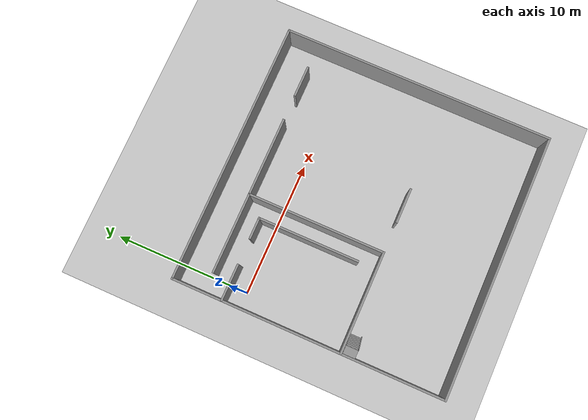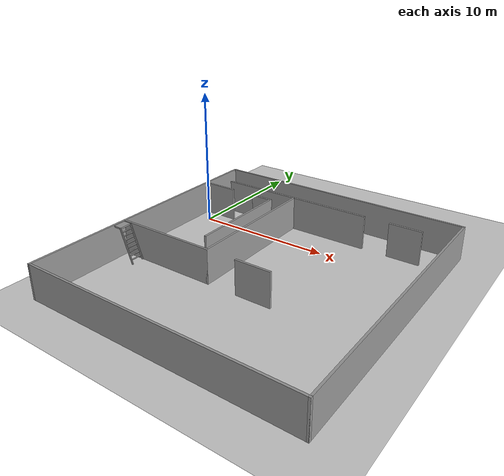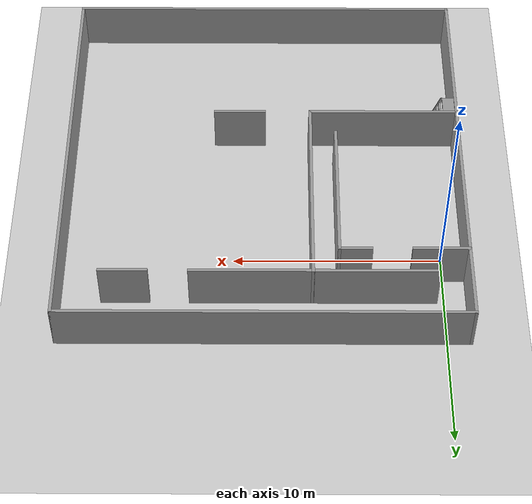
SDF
<sdf version="1.6">
 <world name="default">
  <model name="ground_plane">
   <static>1</static>
   <link name="link">
    <collision name="collision">
     <geometry><plane><normal>0 0 1</normal><size>100 100</size></plane></geometry>
     <surface><friction><ode><mu>100</mu><mu2>50</mu2></ode></friction></surface>
    </collision>
    <visual name="visual">
     <cast_shadows>0</cast_shadows>
     <geometry><plane><normal>0 0 1</normal><size>100 100</size></plane></geometry>
     <material>
      <script><uri>file://media/materials/scripts/gazebo.material</uri><name>Gazebo/Grey</name></script>
     </material>
    </visual>
   </link>
  </model>
  <model name="24fall_finalproject">
   <pose>8.55103 -5.1631 0 0 -0 0</pose>
   <link name="Wall_11">
    <collision name="Wall_11_Collision">
     <geometry><box><size>20.05 0.15 2.5</size></box></geometry>
     <pose>0 0 1.25 0 -0 0</pose>
    </collision>
    <visual name="Wall_11_Visual">
     <pose>0 0 1.25 0 -0 0</pose>
     <geometry><box><size>20.05 0.15 2.5</size></box></geometry>
     <material>
      <script><uri>file://media/materials/scripts/gazebo.material</uri><name>Gazebo/Grey</name></script>
      <ambient>1 1 1 1</ambient>
     </material>
     <meta><layer>0</layer></meta>
    </visual>
    <pose>-9.675 0 0 0 -0 -1.5708</pose>
   </link>
   <link name="Wall_22">
    <collision name="Wall_22_Collision">
     <geometry><box><size>2.727 0.15 2.5</size></box></geometry>
     <pose>0 0 1.25 0 -0 0</pose>
    </collision>
    <visual name="Wall_22_Visual">
     <pose>0 0 1.25 0 -0 0</pose>
     <geometry><box><size>2.727 0.15 2.5</size></box></geometry>
     <material>
      <script><uri>file://media/materials/scripts/gazebo.material</uri><name>Gazebo/Grey</name></script>
      <ambient>1 1 1 1</ambient>
     </material>
     <meta><layer>0</layer></meta>
    </visual>
    <pose>-8.3505 6.277 0 0 -0 0</pose>
   </link>
   <link name="Wall_24">
    <collision name="Wall_24_Collision">
     <geometry><box><size>1.65 0.15 2.5</size></box></geometry>
     <pose>0 0 1.25 0 -0 0</pose>
    </collision>
    <visual name="Wall_24_Visual">
     <pose>0 0 1.25 0 -0 0</pose>
     <geometry><box><size>1.65 0.15 2.5</size></box></geometry>
     <material>
      <script><uri>file://media/materials/scripts/gazebo.material</uri><name>Gazebo/Grey</name></script>
      <ambient>1 1 1 1</ambient>
     </material>
     <meta><layer>0</layer></meta>
    </visual>
    <pose>-4.312 6.277 0 0 -0 0</pose>
   </link>
   <link name="Wall_27">
    <collision name="Wall_27_Collision">
     <geometry><box><size>7.5 0.15 2.5</size></box></geometry>
     <pose>0 0 1.25 0 -0 0</pose>
    </collision>
    <visual name="Wall_27_Visual">
     <pose>0 0 1.25 0 -0 0</pose>
     <geometry><box><size>7.5 0.15 2.5</size></box></geometry>
     <material>
      <script><uri>file://media/materials/scripts/gazebo.material</uri><name>Gazebo/Grey</name></script>
      <ambient>1 1 1 1</ambient>
     </material>
     <meta><layer>0</layer></meta>
    </visual>
    <pose>-3.562 2.602 0 0 -0 -1.5708</pose>
   </link>
   <link name="Wall_29">
    <collision name="Wall_29_Collision">
     <geometry><box><size>7.5 0.15 2.5</size></box></geometry>
     <pose>0 0 1.25 0 -0 0</pose>
    </collision>
    <visual name="Wall_29_Visual">
     <pose>0 0 1.25 0 -0 0</pose>
     <geometry><box><size>7.5 0.15 2.5</size></box></geometry>
     <material>
      <script><uri>file://media/materials/scripts/gazebo.material</uri><name>Gazebo/Grey</name></script>
      <ambient>1 1 1 1</ambient>
     </material>
     <meta><layer>0</layer></meta>
    </visual>
    <pose>-5.989 -2.45 0 0 -0 0</pose>
   </link>
   <link name="Wall_31">
    <collision name="Wall_31_Collision">
     <geometry><box><size>10.2 0.15 2.5</size></box></geometry>
     <pose>0 0 1.25 0 -0 0</pose>
    </collision>
    <visual name="Wall_31_Visual">
     <pose>0 0 1.25 0 -0 0</pose>
     <geometry><box><size>10.2 0.15 2.5</size></box></geometry>
     <material>
      <script><uri>file://media/materials/scripts/gazebo.material</uri><name>Gazebo/Grey</name></script>
      <ambient>1 1 1 1</ambient>
     </material>
     <meta><layer>0</layer></meta>
    </visual>
    <pose>-2.314 2.575 0 0 -0 1.5708</pose>
   </link>
   <link name="Wall_33">
    <collision name="Wall_33_Collision">
     <geometry><box><size>6 0.15 2.5</size></box></geometry>
     <pose>0 0 1.25 0 -0 0</pose>
    </collision>
    <visual name="Wall_33_Visual">
     <pose>0 0 1.25 0 -0 0</pose>
     <geometry><box><size>6 0.15 2.5</size></box></geometry>
     <material>
      <script><uri>file://media/materials/scripts/gazebo.material</uri><name>Gazebo/Grey</name></script>
      <ambient>1 1 1 1</ambient>
     </material>
     <meta><layer>0</layer></meta>
    </visual>
    <pose>-5.239 7.6 0 0 -0 3.14159</pose>
   </link>
   <link name="Wall_36">
    <collision name="Wall_36_Collision">
     <geometry><box><size>19.5 0.15 2.5</size></box></geometry>
     <pose>0 0 1.25 0 -0 0</pose>
    </collision>
    <visual name="Wall_36_Visual">
     <pose>0 0 1.25 0 -0 0</pose>
     <geometry><box><size>19.5 0.15 2.5</size></box></geometry>
     <material>
      <script><uri>file://media/materials/scripts/gazebo.material</uri><name>Gazebo/Grey</name></script>
      <ambient>1 1 1 1</ambient>
     </material>
     <meta><layer>0</layer></meta>
    </visual>
    <pose>1e-06 9.95 0 0 -0 0</pose>
   </link>
   <link name="Wall_37">
    <collision name="Wall_37_Collision">
     <geometry><box><size>20.05 0.15 2.5</size></box></geometry>
     <pose>0 0 1.25 0 -0 0</pose>
    </collision>
    <visual name="Wall_37_Visual">
     <pose>0 0 1.25 0 -0 0</pose>
     <geometry><box><size>20.05 0.15 2.5</size></box></geometry>
     <material>
      <script><uri>file://media/materials/scripts/gazebo.material</uri><name>Gazebo/Grey</name></script>
      <ambient>1 1 1 1</ambient>
     </material>
     <meta><layer>0</layer></meta>
    </visual>
    <pose>9.675 0 0 0 -0 -1.5708</pose>
   </link>
   <link name="Wall_39">
    <collision name="Wall_39_Collision">
     <geometry><box><size>5.902 0.15 2.5</size></box></geometry>
     <pose>0 0 1.25 0 -0 0</pose>
    </collision>
    <visual name="Wall_39_Visual">
     <pose>0 0 1.25 0 -0 0</pose>
     <geometry><box><size>5.902 0.15 2.5</size></box></geometry>
     <material>
      <script><uri>file://media/materials/scripts/gazebo.material</uri><name>Gazebo/Grey</name></script>
      <ambient>1 1 1 1</ambient>
     </material>
     <meta><layer>0</layer></meta>
    </visual>
    <pose>0.562 7.6 0 0 -0 0</pose>
   </link>
   <link name="Wall_46">
    <collision name="Wall_46_Collision">
     <geometry><box><size>19.5 0.15 2.5</size></box></geometry>
     <pose>0 0 1.25 0 -0 0</pose>
    </collision>
    <visual name="Wall_46_Visual">
     <pose>0 0 1.25 0 -0 0</pose>
     <geometry><box><size>19.5 0.15 2.5</size></box></geometry>
     <material>
      <script><uri>file://media/materials/scripts/gazebo.material</uri><name>Gazebo/Grey</name></script>
      <ambient>1 1 1 1</ambient>
     </material>
     <meta><layer>0</layer></meta>
    </visual>
    <pose>1e-06 -9.95 0 0 -0 0</pose>
   </link>
   <link name="Wall_48">
    <collision name="Wall_48_Collision">
     <geometry><box><size>2.6 0.15 2.5</size></box></geometry>
     <pose>0 0 1.25 0 -0 0</pose>
    </collision>
    <visual name="Wall_48_Visual">
     <pose>0 0 1.25 0 -0 0</pose>
     <geometry><box><size>2.6 0.15 2.5</size></box></geometry>
     <material>
      <script><uri>file://media/materials/scripts/gazebo.material</uri><name>Gazebo/Grey</name></script>
      <ambient>1 1 1 1</ambient>
     </material>
     <meta><layer>0</layer></meta>
    </visual>
    <pose>1.213 -2.45 0 0 -0 0</pose>
   </link>
   <link name="Wall_50">
    <collision name="Wall_50_Collision">
     <geometry><box><size>2.35 0.15 2.5</size></box></geometry>
     <pose>0 0 1.25 0 -0 0</pose>
    </collision>
    <visual name="Wall_50_Visual">
     <pose>0 0 1.25 0 -0 0</pose>
     <geometry><box><size>2.35 0.15 2.5</size></box></geometry>
     <material>
      <script><uri>file://media/materials/scripts/gazebo.material</uri><name>Gazebo/Grey</name></script>
      <ambient>1 1 1 1</ambient>
     </material>
     <meta><layer>0</layer></meta>
    </visual>
    <pose>6.538 7.6 0 0 -0 0</pose>
   </link>
   <static>1</static>
  </model>
  <model name="ladder_70deg_0rails">
   <static>1</static>
   <link name="step0">
    <pose>0 0.097059 0.266667 0 -0 0</pose>
    <inertial>
     <mass>9.75482</mass>
     <inertia>
      <ixx>0.00957124</ixx>
      <iyy>0.65963</iyy>
      <izz>0.666842</izz>
      <ixy>0</ixy>
      <ixz>0</ixz>
      <iyz>0</iyz>
     </inertia>
    </inertial>
    <collision name="collision"><geometry><box><size>0.9 0.1016 0.0381</size></box></geometry></collision>
    <visual name="visual">
     <geometry><box><size>0.9 0.1016 0.0381</size></box></geometry>
     <material>
      <script><uri>file://media/materials/scripts/gazebo.material</uri><name>Gazebo/Grey</name></script>
     </material>
    </visual>
   </link>
   <link name="step1">
    <pose>0 0.194117 0.533333 0 -0 0</pose>
    <inertial>
     <mass>9.75482</mass>
     <inertia>
      <ixx>0.00957124</ixx>
      <iyy>0.65963</iyy>
      <izz>0.666842</izz>
      <ixy>0</ixy>
      <ixz>0</ixz>
      <iyz>0</iyz>
     </inertia>
    </inertial>
    <collision name="collision"><geometry><box><size>0.9 0.1016 0.0381</size></box></geometry></collision>
    <visual name="visual">
     <geometry><box><size>0.9 0.1016 0.0381</size></box></geometry>
     <material>
      <script><uri>file://media/materials/scripts/gazebo.material</uri><name>Gazebo/Grey</name></script>
     </material>
    </visual>
   </link>
   <link name="step2">
    <pose>0 0.291176 0.8 0 -0 0</pose>
    <inertial>
     <mass>9.75482</mass>
     <inertia>
      <ixx>0.00957124</ixx>
      <iyy>0.65963</iyy>
      <izz>0.666842</izz>
      <ixy>0</ixy>
      <ixz>0</ixz>
      <iyz>0</iyz>
     </inertia>
    </inertial>
    <collision name="collision"><geometry><box><size>0.9 0.1016 0.0381</size></box></geometry></collision>
    <visual name="visual">
     <geometry><box><size>0.9 0.1016 0.0381</size></box></geometry>
     <material>
      <script><uri>file://media/materials/scripts/gazebo.material</uri><name>Gazebo/Grey</name></script>
     </material>
    </visual>
   </link>
   <link name="step3">
    <pose>0 0.388235 1.06667 0 -0 0</pose>
    <inertial>
     <mass>9.75482</mass>
     <inertia>
      <ixx>0.00957124</ixx>
      <iyy>0.65963</iyy>
      <izz>0.666842</izz>
      <ixy>0</ixy>
      <ixz>0</ixz>
      <iyz>0</iyz>
     </inertia>
    </inertial>
    <collision name="collision"><geometry><box><size>0.9 0.1016 0.0381</size></box></geometry></collision>
    <visual name="visual">
     <geometry><box><size>0.9 0.1016 0.0381</size></box></geometry>
     <material>
      <script><uri>file://media/materials/scripts/gazebo.material</uri><name>Gazebo/Grey</name></script>
     </material>
    </visual>
   </link>
   <link name="step4">
    <pose>0 0.485294 1.33333 0 -0 0</pose>
    <inertial>
     <mass>9.75482</mass>
     <inertia>
      <ixx>0.00957124</ixx>
      <iyy>0.65963</iyy>
      <izz>0.666842</izz>
      <ixy>0</ixy>
      <ixz>0</ixz>
      <iyz>0</iyz>
     </inertia>
    </inertial>
    <collision name="collision"><geometry><box><size>0.9 0.1016 0.0381</size></box></geometry></collision>
    <visual name="visual">
     <geometry><box><size>0.9 0.1016 0.0381</size></box></geometry>
     <material>
      <script><uri>file://media/materials/scripts/gazebo.material</uri><name>Gazebo/Grey</name></script>
     </material>
    </visual>
   </link>
   <link name="step5">
    <pose>0 0.582352 1.6 0 -0 0</pose>
    <inertial>
     <mass>9.75482</mass>
     <inertia>
      <ixx>0.00957124</ixx>
      <iyy>0.65963</iyy>
      <izz>0.666842</izz>
      <ixy>0</ixy>
      <ixz>0</ixz>
      <iyz>0</iyz>
     </inertia>
    </inertial>
    <collision name="collision"><geometry><box><size>0.9 0.1016 0.0381</size></box></geometry></collision>
    <visual name="visual">
     <geometry><box><size>0.9 0.1016 0.0381</size></box></geometry>
     <material>
      <script><uri>file://media/materials/scripts/gazebo.material</uri><name>Gazebo/Grey</name></script>
     </material>
    </visual>
   </link>
   <link name="step6">
    <pose>0 0.679411 1.86667 0 -0 0</pose>
    <inertial>
     <mass>9.75482</mass>
     <inertia>
      <ixx>0.00957124</ixx>
      <iyy>0.65963</iyy>
      <izz>0.666842</izz>
      <ixy>0</ixy>
      <ixz>0</ixz>
      <iyz>0</iyz>
     </inertia>
    </inertial>
    <collision name="collision"><geometry><box><size>0.9 0.1016 0.0381</size></box></geometry></collision>
    <visual name="visual">
     <geometry><box><size>0.9 0.1016 0.0381</size></box></geometry>
     <material>
      <script><uri>file://media/materials/scripts/gazebo.material</uri><name>Gazebo/Grey</name></script>
     </material>
    </visual>
   </link>
   <link name="step7">
    <pose>0 0.77647 2.13333 0 -0 0</pose>
    <inertial>
     <mass>9.75482</mass>
     <inertia>
      <ixx>0.00957124</ixx>
      <iyy>0.65963</iyy>
      <izz>0.666842</izz>
      <ixy>0</ixy>
      <ixz>0</ixz>
      <iyz>0</iyz>
     </inertia>
    </inertial>
    <collision name="collision"><geometry><box><size>0.9 0.1016 0.0381</size></box></geometry></collision>
    <visual name="visual">
     <geometry><box><size>0.9 0.1016 0.0381</size></box></geometry>
     <material>
      <script><uri>file://media/materials/scripts/gazebo.material</uri><name>Gazebo/Grey</name></script>
     </material>
    </visual>
   </link>
   <link name="landing">
    <pose>0 1.17353 2.4 0 -0 0</pose>
    <inertial>
     <mass>57.6072</mass>
     <inertia><ixx>1.73518</ixx><iyy>3.89545</iyy><izz>5.6167</izz><ixy>0</ixy><ixz>0</ixz><iyz>0</iyz></inertia>
    </inertial>
    <collision name="collision"><geometry><box><size>0.9 0.6 0.1016</size></box></geometry></collision>
    <visual name="visual">
     <geometry><box><size>0.9 0.6 0.1016</size></box></geometry>
     <material>
      <script><uri>file://media/materials/scripts/gazebo.material</uri><name>Gazebo/Grey</name></script>
     </material>
    </visual>
   </link>
   <link name="left_side_wall">
    <pose>-0.45 0.436764 1.2 1.22173 -0 0</pose>
    <collision name="collision"><geometry><box><size>0.0508 2.63403 0.13</size></box></geometry></collision>
    <visual name="visual">
     <geometry><box><size>0.0508 2.63403 0.13</size></box></geometry>
     <material>
      <script><uri>file://media/materials/scripts/gazebo.material</uri><name>Gazebo/Grey</name></script>
     </material>
    </visual>
   </link>
   <link name="right_side_wall">
    <pose>0.45 0.436764 1.2 1.22173 -0 0</pose>
    <collision name="collision"><geometry><box><size>0.0508 2.63403 0.13</size></box></geometry></collision>
    <visual name="visual">
     <geometry><box><size>0.0508 2.63403 0.13</size></box></geometry>
     <material>
      <script><uri>file://media/materials/scripts/gazebo.material</uri><name>Gazebo/Grey</name></script>
     </material>
    </visual>
   </link>
   <pose>0.417198 -8.16364 -0 0 -0 1.5708</pose>
  </model>
 </world>
</sdf>
